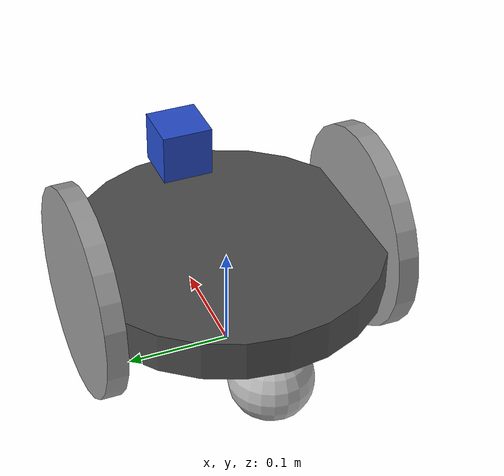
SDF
<sdf version='1.7'>
  <model name='differential_wheeled_robot'>
    <link name='base_footprint'>
      <inertial>
        <pose>0 0 0.079995 0 -0 0</pose>
        <mass>1.5001</mass>
        <inertia>
          <ixx>0.00905897</ixx>
          <ixy>0</ixy>
          <ixz>0</ixz>
          <iyy>0.015109</iyy>
          <iyz>0</iyz>
          <izz>0.0194</izz>
        </inertia>
      </inertial>
      <collision name='base_footprint_fixed_joint_lump__yyf_collision'>
        <pose>0 0 0.1 0 -0 0</pose>
        <geometry>
          <cylinder>
            <length>0.04</length>
            <radius>0.15</radius>
          </cylinder>
        </geometry>
      </collision>
      <collision name='base_footprint_fixed_joint_lump__caster_back_link_collision_1'>
        <pose>-0.11 0 0.04 0 -0 0</pose>
        <geometry>
          <sphere>
            <radius>0.04</radius>
          </sphere>
        </geometry>
        <surface>
          <contact>
            <ode/>
          </contact>
          <friction>
            <ode>
              <mu>0</mu>
              <mu2>0</mu2>
            </ode>
          </friction>
        </surface>
      </collision>
      <collision name='base_footprint_fixed_joint_lump__caster_front_link_collision_2'>
        <pose>0.11 0 0.04 0 -0 0</pose>
        <geometry>
          <sphere>
            <radius>0.04</radius>
          </sphere>
        </geometry>
        <surface>
          <contact>
            <ode/>
          </contact>
          <friction>
            <ode>
              <mu>0</mu>
              <mu2>0</mu2>
            </ode>
          </friction>
        </surface>
      </collision>
      <visual name='base_footprint_visual'>
        <pose>0 0 0 0 -0 0</pose>
        <geometry>
          <box>
            <size>0.001 0.001 0.001</size>
          </box>
        </geometry>
      </visual>
      <visual name='base_footprint_fixed_joint_lump__base_link_visual_1'>
        <pose>0 0 0.1 0 -0 0</pose>
        <geometry>
          <cylinder>
            <length>0.04</length>
            <radius>0.15</radius>
          </cylinder>
        </geometry>
        <material>
          <script>
            <name>Gazebo/Darkgray</name>
            <uri>file://media/materials/scripts/gazebo.material</uri>
          </script>
        </material>
      </visual>
      <visual name='base_footprint_fixed_joint_lump__caster_back_link_visual_2'>
        <pose>-0.11 0 0.04 0 -0 0</pose>
        <geometry>
          <sphere>
            <radius>0.04</radius>
          </sphere>
        </geometry>
      </visual>
      <visual name='base_footprint_fixed_joint_lump__caster_front_link_visual_3'>
        <pose>0.11 0 0.04 0 -0 0</pose>
        <geometry>
          <sphere>
            <radius>0.04</radius>
          </sphere>
        </geometry>
      </visual>
      <visual name='base_footprint_fixed_joint_lump__hokuyo_link_visual_4'>
        <pose>0.125 0 0.15 0 -0 0</pose>
        <geometry>
          <box>
            <size>0.05 0.05 0.05</size>
          </box>
        </geometry>
        <material>
          <script>
            <name>Gazebo/Blue</name>
            <uri>file://media/materials/scripts/gazebo.material</uri>
          </script>
        </material>
      </visual>
      <sensor name='contacts' type='contact'>
        <contact>
          <collision>yyf</collision>
          <topic>__default_topic__</topic>
        </contact>
        <plugin name='gazebo_ros_bumper_controller' filename='libgazebo_ros_bumper.so'>
          <alwaysOn>1</alwaysOn>
          <updateRate>10</updateRate>
          <frameName>base_link</frameName>
          <topicName>/robot_bumper</topicName>
          <visualize>1</visualize>
        </plugin>
        <pose>0 0 0.1 0 -0 0</pose>
      </sensor>
      <gravity>1</gravity>
      <sensor name='head_hokuyo_sensor' type='ray'>
        <visualize>1</visualize>
        <update_rate>100</update_rate>
        <ray>
          <scan>
            <horizontal>
              <samples>37</samples>
              <resolution>1</resolution>
              <min_angle>-1.5708</min_angle>
              <max_angle>1.5708</max_angle>
            </horizontal>
          </scan>
          <range>
            <min>0</min>
            <max>2</max>
            <resolution>0.001</resolution>
          </range>
        </ray>
        <plugin name='gazebo_ros_head_hokuyo_controller' filename='libgazebo_ros_laser.so'>
          <topicName>/scan</topicName>
          <frameName>hokuyo_link</frameName>
        </plugin>
        <pose>0.125 0 0.15 0 -0 0</pose>
      </sensor>
    </link>
    <joint name='front_left_wheel_joint' type='revolute'>
      <pose relative_to='base_footprint'>0 0.14 0.1 0 -0 0</pose>
      <parent>base_footprint</parent>
      <child>front_left_wheel</child>
      <axis>
        <xyz>0 1 0</xyz>
        <limit>
          <effort>100</effort>
          <velocity>100</velocity>
          <lower>-1e+16</lower>
          <upper>1e+16</upper>
        </limit>
        <dynamics>
          <spring_reference>0</spring_reference>
          <spring_stiffness>0</spring_stiffness>
        </dynamics>
      </axis>
    </joint>
    <link name='front_left_wheel'>
      <pose relative_to='front_left_wheel_joint'>0 0 0 0 -0 0</pose>
      <inertial>
        <pose>0 0 0 0 -0 0</pose>
        <mass>0.5</mass>
        <inertia>
          <ixx>0.00126667</ixx>
          <ixy>0</ixy>
          <ixz>0</ixz>
          <iyy>0.00126667</iyy>
          <iyz>0</iyz>
          <izz>0.0025</izz>
        </inertia>
      </inertial>
      <collision name='front_left_wheel_collision'>
        <pose>0 0 0 -1.5708 0 0</pose>
        <geometry>
          <cylinder>
            <length>0.02</length>
            <radius>0.1</radius>
          </cylinder>
        </geometry>
        <surface>
          <contact>
            <ode>
              <kp>1e+07</kp>
              <kd>1</kd>
            </ode>
          </contact>
          <friction>
            <ode>
              <mu>1</mu>
              <mu2>1</mu2>
              <fdir1>1 0 0</fdir1>
            </ode>
          </friction>
        </surface>
      </collision>
      <visual name='front_left_wheel_visual'>
        <pose>0 0 0 -1.5708 0 0</pose>
        <geometry>
          <cylinder>
            <length>0.02</length>
            <radius>0.1</radius>
          </cylinder>
        </geometry>
        <material>
          <script>
            <name>Gazebo/Grey</name>
            <uri>file://media/materials/scripts/gazebo.material</uri>
          </script>
        </material>
      </visual>
      <gravity>1</gravity>
    </link>
    <joint name='front_right_wheel_joint' type='revolute'>
      <pose relative_to='base_footprint'>0 -0.14 0.1 0 -0 0</pose>
      <parent>base_footprint</parent>
      <child>front_right_wheel</child>
      <axis>
        <xyz>0 1 0</xyz>
        <limit>
          <effort>100</effort>
          <velocity>100</velocity>
          <lower>-1e+16</lower>
          <upper>1e+16</upper>
        </limit>
        <dynamics>
          <spring_reference>0</spring_reference>
          <spring_stiffness>0</spring_stiffness>
        </dynamics>
      </axis>
    </joint>
    <link name='front_right_wheel'>
      <pose relative_to='front_right_wheel_joint'>0 0 0 0 -0 0</pose>
      <inertial>
        <pose>0 0 0 0 -0 0</pose>
        <mass>0.5</mass>
        <inertia>
          <ixx>0.00126667</ixx>
          <ixy>0</ixy>
          <ixz>0</ixz>
          <iyy>0.00126667</iyy>
          <iyz>0</iyz>
          <izz>0.0025</izz>
        </inertia>
      </inertial>
      <collision name='front_right_wheel_collision'>
        <pose>0 0 0 -1.5708 0 0</pose>
        <geometry>
          <cylinder>
            <length>0.02</length>
            <radius>0.1</radius>
          </cylinder>
        </geometry>
        <surface>
          <contact>
            <ode>
              <kp>1e+07</kp>
              <kd>1</kd>
            </ode>
          </contact>
          <friction>
            <ode>
              <mu>1</mu>
              <mu2>1</mu2>
              <fdir1>1 0 0</fdir1>
            </ode>
          </friction>
        </surface>
      </collision>
      <visual name='front_right_wheel_visual'>
        <pose>0 0 0 -1.5708 0 0</pose>
        <geometry>
          <cylinder>
            <length>0.02</length>
            <radius>0.1</radius>
          </cylinder>
        </geometry>
        <material>
          <script>
            <name>Gazebo/Grey</name>
            <uri>file://media/materials/scripts/gazebo.material</uri>
          </script>
        </material>
      </visual>
      <gravity>1</gravity>
    </link>
    <static>0</static>
    <plugin name='differential_drive_controller' filename='libgazebo_ros_diff_drive.so'>
      <rosDebugLevel>Debug</rosDebugLevel>
      <publishWheelTF>0</publishWheelTF>
      <robotNamespace>/</robotNamespace>
      <publishTf>1</publishTf>
      <publishWheelJointState>0</publishWheelJointState>
      <alwaysOn>1</alwaysOn>
      <updateRate>100.0</updateRate>
      <leftJoint>front_left_wheel_joint</leftJoint>
      <rightJoint>front_right_wheel_joint</rightJoint>
      <wheelSeparation>0.3</wheelSeparation>
      <wheelDiameter>0.2</wheelDiameter>
      <broadcastTF>1</broadcastTF>
      <wheelTorque>30</wheelTorque>
      <wheelAcceleration>30</wheelAcceleration>
      <commandTopic>cmd_vel</commandTopic>
      <odometryFrame>odom</odometryFrame>
      <odometryTopic>odom</odometryTopic>
      <robotBaseFrame>base_footprint</robotBaseFrame>
    </plugin>
  </model>
</sdf>
